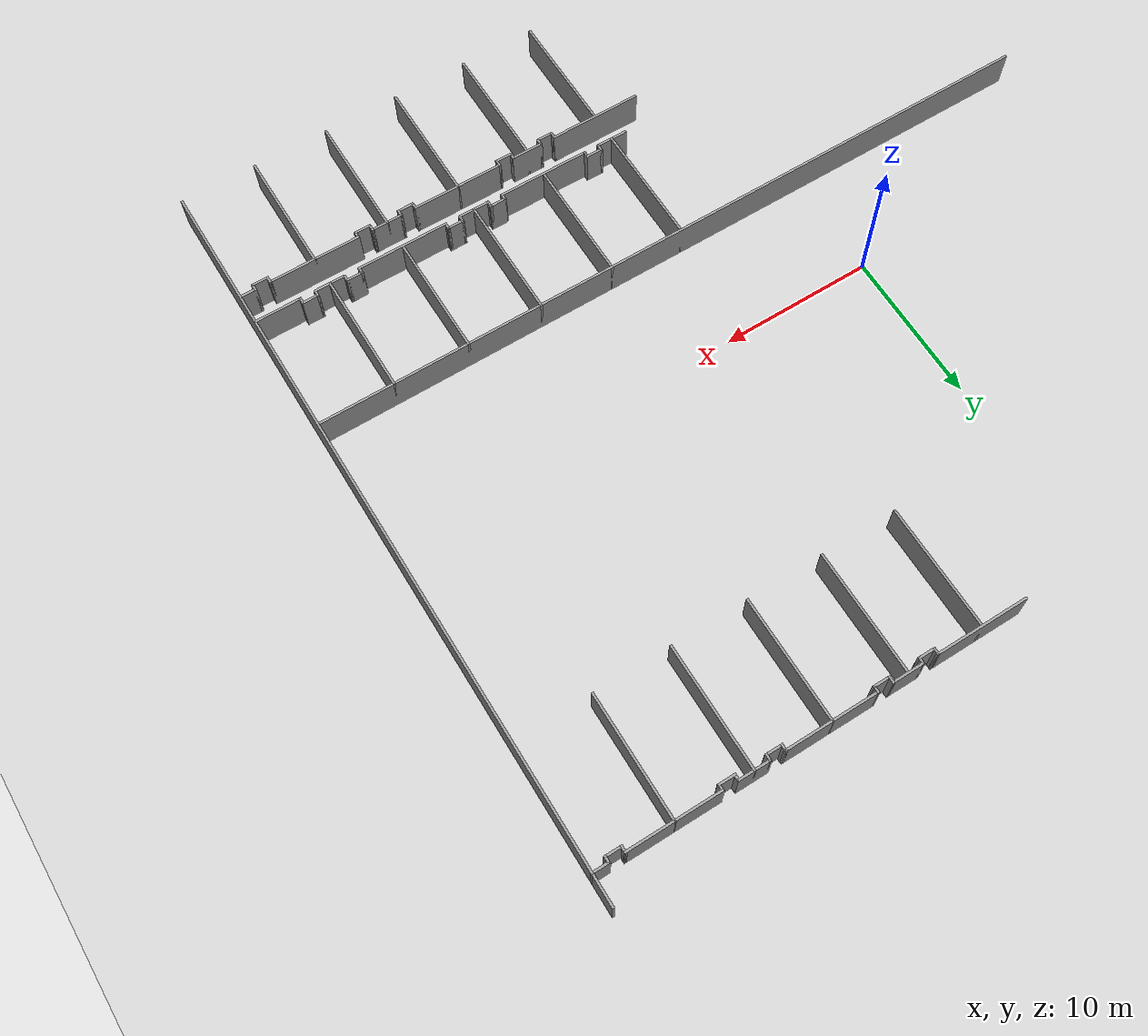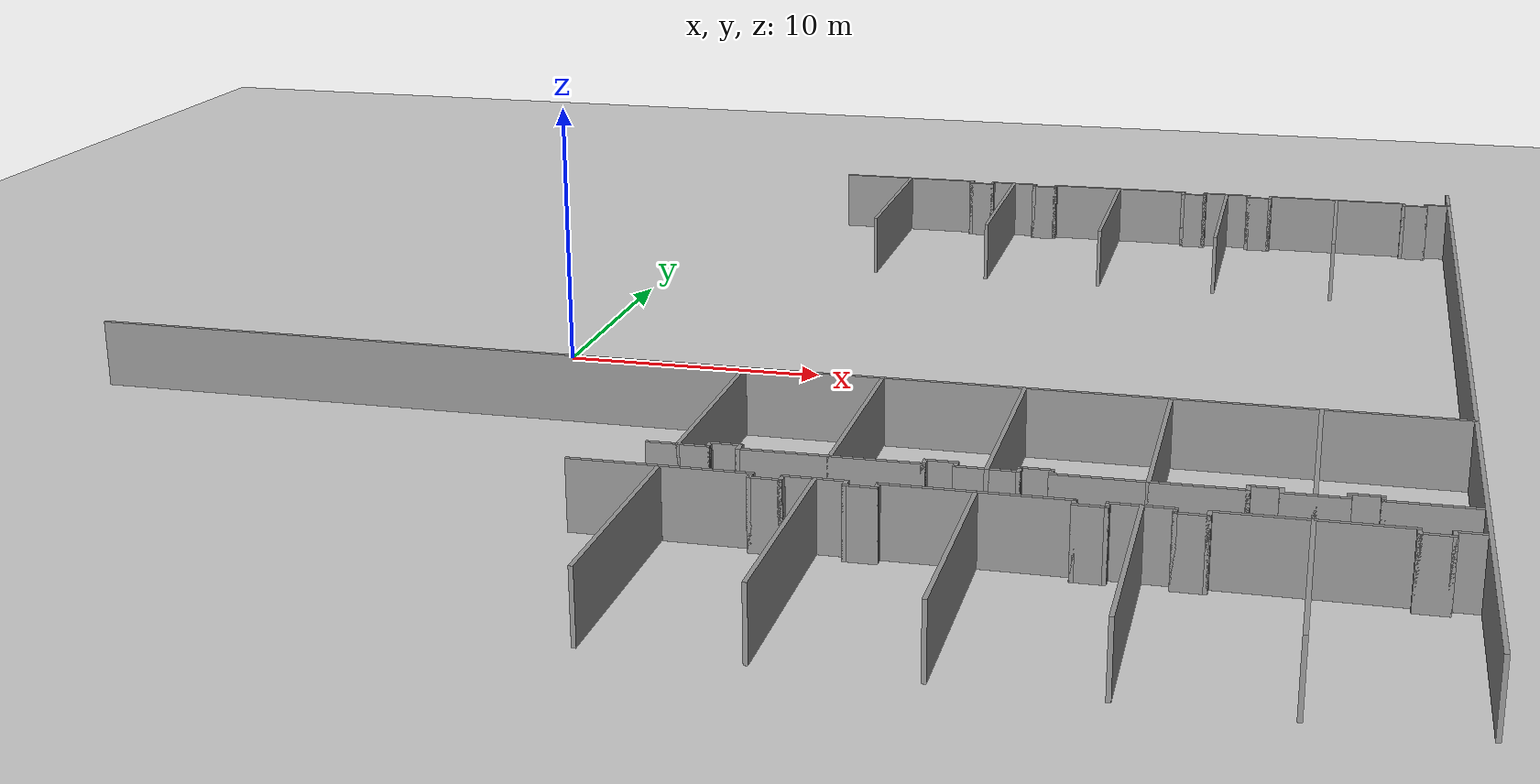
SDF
<sdf version="1.7">
 <world name="default">
  <model name="ground_plane">
   <static>1</static>
   <link name="link">
    <collision name="collision">
     <geometry><plane><normal>0 0 1</normal><size>100 100</size></plane></geometry>
     <surface>
      <contact><collide_bitmask>65535</collide_bitmask></contact>
      <friction><ode><mu>100</mu><mu2>50</mu2></ode></friction>
     </surface>
    </collision>
    <visual name="visual">
     <cast_shadows>0</cast_shadows>
     <geometry><plane><normal>0 0 1</normal><size>100 100</size></plane></geometry>
     <material>
      <script><uri>file://media/materials/scripts/gazebo.material</uri><name>Gazebo/Grey</name></script>
     </material>
    </visual>
   </link>
  </model>
  <model name="hotel_floor">
   <link name="Wall_256">
    <collision name="Wall_256_Collision">
     <geometry><box><size>6.15 0.15 2.5</size></box></geometry>
     <pose>0 0 1.25 0 -0 0</pose>
    </collision>
    <visual name="Wall_256_Visual">
     <pose>0 0 1.25 0 -0 0</pose>
     <geometry><box><size>6.15 0.15 2.5</size></box></geometry>
     <material>
      <script><uri>file://media/materials/scripts/gazebo.material</uri><name>Gazebo/Grey</name></script>
      <ambient>1 1 1 1</ambient>
     </material>
     <meta><layer>0</layer></meta>
    </visual>
    <pose>9 -17 0 0 -0 0</pose>
   </link>
   <link name="Wall_258">
    <collision name="Wall_258_Collision">
     <geometry><box><size>0.5 0.15 2.5</size></box></geometry>
     <pose>0 0 1.25 0 -0 0</pose>
    </collision>
    <visual name="Wall_258_Visual">
     <pose>0 0 1.25 0 -0 0</pose>
     <geometry><box><size>0.5 0.15 2.5</size></box></geometry>
     <material>
      <script><uri>file://media/materials/scripts/gazebo.material</uri><name>Gazebo/Grey</name></script>
      <ambient>1 1 1 1</ambient>
     </material>
     <meta><layer>0</layer></meta>
    </visual>
    <pose>12 -17.175 0 0 -0 -1.5708</pose>
   </link>
   <link name="Wall_259">
    <collision name="Wall_259_Collision">
     <geometry><box><size>1.15 0.15 2.5</size></box></geometry>
     <pose>0 0 1.25 0 -0 0</pose>
    </collision>
    <visual name="Wall_259_Visual">
     <pose>0 0 1.25 0 -0 0</pose>
     <geometry><box><size>1.15 0.15 2.5</size></box></geometry>
     <material>
      <script><uri>file://media/materials/scripts/gazebo.material</uri><name>Gazebo/Grey</name></script>
      <ambient>1 1 1 1</ambient>
     </material>
     <meta><layer>0</layer></meta>
    </visual>
    <pose>12.5 -17.35 0 0 -0 0</pose>
   </link>
   <link name="Wall_261">
    <collision name="Wall_261_Collision">
     <geometry><box><size>0.5 0.15 2.5</size></box></geometry>
     <pose>0 0 1.25 0 -0 0</pose>
    </collision>
    <visual name="Wall_261_Visual">
     <pose>0 0 1.25 0 -0 0</pose>
     <geometry><box><size>0.5 0.15 2.5</size></box></geometry>
     <material>
      <script><uri>file://media/materials/scripts/gazebo.material</uri><name>Gazebo/Grey</name></script>
      <ambient>1 1 1 1</ambient>
     </material>
     <meta><layer>0</layer></meta>
    </visual>
    <pose>13 -17.175 0 0 -0 1.5708</pose>
   </link>
   <link name="Wall_262">
    <collision name="Wall_262_Collision">
     <geometry><box><size>2.15 0.15 2.5</size></box></geometry>
     <pose>0 0 1.25 0 -0 0</pose>
    </collision>
    <visual name="Wall_262_Visual">
     <pose>0 0 1.25 0 -0 0</pose>
     <geometry><box><size>2.15 0.15 2.5</size></box></geometry>
     <material>
      <script><uri>file://media/materials/scripts/gazebo.material</uri><name>Gazebo/Grey</name></script>
      <ambient>1 1 1 1</ambient>
     </material>
     <meta><layer>0</layer></meta>
    </visual>
    <pose>14 -17 0 0 -0 0</pose>
   </link>
   <link name="Wall_264">
    <collision name="Wall_264_Collision">
     <geometry><box><size>0.5 0.15 2.5</size></box></geometry>
     <pose>0 0 1.25 0 -0 0</pose>
    </collision>
    <visual name="Wall_264_Visual">
     <pose>0 0 1.25 0 -0 0</pose>
     <geometry><box><size>0.5 0.15 2.5</size></box></geometry>
     <material>
      <script><uri>file://media/materials/scripts/gazebo.material</uri><name>Gazebo/Grey</name></script>
      <ambient>1 1 1 1</ambient>
     </material>
     <meta><layer>0</layer></meta>
    </visual>
    <pose>15 -17.175 0 0 -0 -1.5708</pose>
   </link>
   <link name="Wall_265">
    <collision name="Wall_265_Collision">
     <geometry><box><size>1.15 0.15 2.5</size></box></geometry>
     <pose>0 0 1.25 0 -0 0</pose>
    </collision>
    <visual name="Wall_265_Visual">
     <pose>0 0 1.25 0 -0 0</pose>
     <geometry><box><size>1.15 0.15 2.5</size></box></geometry>
     <material>
      <script><uri>file://media/materials/scripts/gazebo.material</uri><name>Gazebo/Grey</name></script>
      <ambient>1 1 1 1</ambient>
     </material>
     <meta><layer>0</layer></meta>
    </visual>
    <pose>15.5 -17.35 0 0 -0 0</pose>
   </link>
   <link name="Wall_267">
    <collision name="Wall_267_Collision">
     <geometry><box><size>0.5 0.15 2.5</size></box></geometry>
     <pose>0 0 1.25 0 -0 0</pose>
    </collision>
    <visual name="Wall_267_Visual">
     <pose>0 0 1.25 0 -0 0</pose>
     <geometry><box><size>0.5 0.15 2.5</size></box></geometry>
     <material>
      <script><uri>file://media/materials/scripts/gazebo.material</uri><name>Gazebo/Grey</name></script>
      <ambient>1 1 1 1</ambient>
     </material>
     <meta><layer>0</layer></meta>
    </visual>
    <pose>16 -17.175 0 0 -0 1.5708</pose>
   </link>
   <link name="Wall_268">
    <collision name="Wall_268_Collision">
     <geometry><box><size>6.15 0.15 2.5</size></box></geometry>
     <pose>0 0 1.25 0 -0 0</pose>
    </collision>
    <visual name="Wall_268_Visual">
     <pose>0 0 1.25 0 -0 0</pose>
     <geometry><box><size>6.15 0.15 2.5</size></box></geometry>
     <material>
      <script><uri>file://media/materials/scripts/gazebo.material</uri><name>Gazebo/Grey</name></script>
      <ambient>1 1 1 1</ambient>
     </material>
     <meta><layer>0</layer></meta>
    </visual>
    <pose>19 -17 0 0 -0 0</pose>
   </link>
   <link name="Wall_270">
    <collision name="Wall_270_Collision">
     <geometry><box><size>0.5 0.15 2.5</size></box></geometry>
     <pose>0 0 1.25 0 -0 0</pose>
    </collision>
    <visual name="Wall_270_Visual">
     <pose>0 0 1.25 0 -0 0</pose>
     <geometry><box><size>0.5 0.15 2.5</size></box></geometry>
     <material>
      <script><uri>file://media/materials/scripts/gazebo.material</uri><name>Gazebo/Grey</name></script>
      <ambient>1 1 1 1</ambient>
     </material>
     <meta><layer>0</layer></meta>
    </visual>
    <pose>22 -17.175 0 0 -0 -1.5708</pose>
   </link>
   <link name="Wall_271">
    <collision name="Wall_271_Collision">
     <geometry><box><size>1.15 0.15 2.5</size></box></geometry>
     <pose>0 0 1.25 0 -0 0</pose>
    </collision>
    <visual name="Wall_271_Visual">
     <pose>0 0 1.25 0 -0 0</pose>
     <geometry><box><size>1.15 0.15 2.5</size></box></geometry>
     <material>
      <script><uri>file://media/materials/scripts/gazebo.material</uri><name>Gazebo/Grey</name></script>
      <ambient>1 1 1 1</ambient>
     </material>
     <meta><layer>0</layer></meta>
    </visual>
    <pose>22.5 -17.35 0 0 -0 0</pose>
   </link>
   <link name="Wall_273">
    <collision name="Wall_273_Collision">
     <geometry><box><size>0.5 0.15 2.5</size></box></geometry>
     <pose>0 0 1.25 0 -0 0</pose>
    </collision>
    <visual name="Wall_273_Visual">
     <pose>0 0 1.25 0 -0 0</pose>
     <geometry><box><size>0.5 0.15 2.5</size></box></geometry>
     <material>
      <script><uri>file://media/materials/scripts/gazebo.material</uri><name>Gazebo/Grey</name></script>
      <ambient>1 1 1 1</ambient>
     </material>
     <meta><layer>0</layer></meta>
    </visual>
    <pose>23 -17.175 0 0 -0 1.5708</pose>
   </link>
   <link name="Wall_274">
    <collision name="Wall_274_Collision">
     <geometry><box><size>2.15 0.15 2.5</size></box></geometry>
     <pose>0 0 1.25 0 -0 0</pose>
    </collision>
    <visual name="Wall_274_Visual">
     <pose>0 0 1.25 0 -0 0</pose>
     <geometry><box><size>2.15 0.15 2.5</size></box></geometry>
     <material>
      <script><uri>file://media/materials/scripts/gazebo.material</uri><name>Gazebo/Grey</name></script>
      <ambient>1 1 1 1</ambient>
     </material>
     <meta><layer>0</layer></meta>
    </visual>
    <pose>24 -17 0 0 -0 0</pose>
   </link>
   <link name="Wall_276">
    <collision name="Wall_276_Collision">
     <geometry><box><size>0.5 0.15 2.5</size></box></geometry>
     <pose>0 0 1.25 0 -0 0</pose>
    </collision>
    <visual name="Wall_276_Visual">
     <pose>0 0 1.25 0 -0 0</pose>
     <geometry><box><size>0.5 0.15 2.5</size></box></geometry>
     <material>
      <script><uri>file://media/materials/scripts/gazebo.material</uri><name>Gazebo/Grey</name></script>
      <ambient>1 1 1 1</ambient>
     </material>
     <meta><layer>0</layer></meta>
    </visual>
    <pose>25 -17.175 0 0 -0 -1.5708</pose>
   </link>
   <link name="Wall_277">
    <collision name="Wall_277_Collision">
     <geometry><box><size>1.15 0.15 2.5</size></box></geometry>
     <pose>0 0 1.25 0 -0 0</pose>
    </collision>
    <visual name="Wall_277_Visual">
     <pose>0 0 1.25 0 -0 0</pose>
     <geometry><box><size>1.15 0.15 2.5</size></box></geometry>
     <material>
      <script><uri>file://media/materials/scripts/gazebo.material</uri><name>Gazebo/Grey</name></script>
      <ambient>1 1 1 1</ambient>
     </material>
     <meta><layer>0</layer></meta>
    </visual>
    <pose>25.5 -17.35 0 0 -0 0</pose>
   </link>
   <link name="Wall_279">
    <collision name="Wall_279_Collision">
     <geometry><box><size>0.5 0.15 2.5</size></box></geometry>
     <pose>0 0 1.25 0 -0 0</pose>
    </collision>
    <visual name="Wall_279_Visual">
     <pose>0 0 1.25 0 -0 0</pose>
     <geometry><box><size>0.5 0.15 2.5</size></box></geometry>
     <material>
      <script><uri>file://media/materials/scripts/gazebo.material</uri><name>Gazebo/Grey</name></script>
      <ambient>1 1 1 1</ambient>
     </material>
     <meta><layer>0</layer></meta>
    </visual>
    <pose>26 -17.175 0 0 -0 1.5708</pose>
   </link>
   <link name="Wall_28">
    <collision name="Wall_28_Collision">
     <geometry><box><size>50.15 0.15 2.5</size></box></geometry>
     <pose>0 0 1.25 0 -0 0</pose>
    </collision>
    <visual name="Wall_28_Visual">
     <pose>0 0 1.25 0 -0 0</pose>
     <geometry><box><size>50.15 0.15 2.5</size></box></geometry>
     <material>
      <script><uri>file://media/materials/scripts/gazebo.material</uri><name>Gazebo/Grey</name></script>
      <ambient>1 1 1 1</ambient>
     </material>
     <meta><layer>0</layer></meta>
    </visual>
    <pose>9 -7 0 0 -0 0</pose>
   </link>
   <link name="Wall_280">
    <collision name="Wall_280_Collision">
     <geometry><box><size>6.15 0.15 2.5</size></box></geometry>
     <pose>0 0 1.25 0 -0 0</pose>
    </collision>
    <visual name="Wall_280_Visual">
     <pose>0 0 1.25 0 -0 0</pose>
     <geometry><box><size>6.15 0.15 2.5</size></box></geometry>
     <material>
      <script><uri>file://media/materials/scripts/gazebo.material</uri><name>Gazebo/Grey</name></script>
      <ambient>1 1 1 1</ambient>
     </material>
     <meta><layer>0</layer></meta>
    </visual>
    <pose>29 -17 0 0 -0 0</pose>
   </link>
   <link name="Wall_282">
    <collision name="Wall_282_Collision">
     <geometry><box><size>0.5 0.15 2.5</size></box></geometry>
     <pose>0 0 1.25 0 -0 0</pose>
    </collision>
    <visual name="Wall_282_Visual">
     <pose>0 0 1.25 0 -0 0</pose>
     <geometry><box><size>0.5 0.15 2.5</size></box></geometry>
     <material>
      <script><uri>file://media/materials/scripts/gazebo.material</uri><name>Gazebo/Grey</name></script>
      <ambient>1 1 1 1</ambient>
     </material>
     <meta><layer>0</layer></meta>
    </visual>
    <pose>32 -17.175 0 0 -0 -1.5708</pose>
   </link>
   <link name="Wall_283">
    <collision name="Wall_283_Collision">
     <geometry><box><size>1.15 0.15 2.5</size></box></geometry>
     <pose>0 0 1.25 0 -0 0</pose>
    </collision>
    <visual name="Wall_283_Visual">
     <pose>0 0 1.25 0 -0 0</pose>
     <geometry><box><size>1.15 0.15 2.5</size></box></geometry>
     <material>
      <script><uri>file://media/materials/scripts/gazebo.material</uri><name>Gazebo/Grey</name></script>
      <ambient>1 1 1 1</ambient>
     </material>
     <meta><layer>0</layer></meta>
    </visual>
    <pose>32.5 -17.35 0 0 -0 0</pose>
   </link>
   <link name="Wall_285">
    <collision name="Wall_285_Collision">
     <geometry><box><size>0.5 0.15 2.5</size></box></geometry>
     <pose>0 0 1.25 0 -0 0</pose>
    </collision>
    <visual name="Wall_285_Visual">
     <pose>0 0 1.25 0 -0 0</pose>
     <geometry><box><size>0.5 0.15 2.5</size></box></geometry>
     <material>
      <script><uri>file://media/materials/scripts/gazebo.material</uri><name>Gazebo/Grey</name></script>
      <ambient>1 1 1 1</ambient>
     </material>
     <meta><layer>0</layer></meta>
    </visual>
    <pose>33 -17.175 0 0 -0 1.5708</pose>
   </link>
   <link name="Wall_286">
    <collision name="Wall_286_Collision">
     <geometry><box><size>1.15 0.15 2.5</size></box></geometry>
     <pose>0 0 1.25 0 -0 0</pose>
    </collision>
    <visual name="Wall_286_Visual">
     <pose>0 0 1.25 0 -0 0</pose>
     <geometry><box><size>1.15 0.15 2.5</size></box></geometry>
     <material>
      <script><uri>file://media/materials/scripts/gazebo.material</uri><name>Gazebo/Grey</name></script>
      <ambient>1 1 1 1</ambient>
     </material>
     <meta><layer>0</layer></meta>
    </visual>
    <pose>33.5 -17 0 0 -0 0</pose>
   </link>
   <link name="Wall_306">
    <collision name="Wall_306_Collision">
     <geometry><box><size>2.15 0.15 2.5</size></box></geometry>
     <pose>0 0 1.25 0 -0 0</pose>
    </collision>
    <visual name="Wall_306_Visual">
     <pose>0 0 1.25 0 -0 0</pose>
     <geometry><box><size>2.15 0.15 2.5</size></box></geometry>
     <material>
      <script><uri>file://media/materials/scripts/gazebo.material</uri><name>Gazebo/Grey</name></script>
      <ambient>1 1 1 1</ambient>
     </material>
     <meta><layer>0</layer></meta>
    </visual>
    <pose>9 -15 0 0 -0 0</pose>
   </link>
   <link name="Wall_308">
    <collision name="Wall_308_Collision">
     <geometry><box><size>0.5 0.15 2.5</size></box></geometry>
     <pose>0 0 1.25 0 -0 0</pose>
    </collision>
    <visual name="Wall_308_Visual">
     <pose>0 0 1.25 0 -0 0</pose>
     <geometry><box><size>0.5 0.15 2.5</size></box></geometry>
     <material>
      <script><uri>file://media/materials/scripts/gazebo.material</uri><name>Gazebo/Grey</name></script>
      <ambient>1 1 1 1</ambient>
     </material>
     <meta><layer>0</layer></meta>
    </visual>
    <pose>10 -14.825 0 0 -0 1.5708</pose>
   </link>
   <link name="Wall_309">
    <collision name="Wall_309_Collision">
     <geometry><box><size>1.15 0.15 2.5</size></box></geometry>
     <pose>0 0 1.25 0 -0 0</pose>
    </collision>
    <visual name="Wall_309_Visual">
     <pose>0 0 1.25 0 -0 0</pose>
     <geometry><box><size>1.15 0.15 2.5</size></box></geometry>
     <material>
      <script><uri>file://media/materials/scripts/gazebo.material</uri><name>Gazebo/Grey</name></script>
      <ambient>1 1 1 1</ambient>
     </material>
     <meta><layer>0</layer></meta>
    </visual>
    <pose>10.5 -14.65 0 0 -0 0</pose>
   </link>
   <link name="Wall_311">
    <collision name="Wall_311_Collision">
     <geometry><box><size>0.5 0.15 2.5</size></box></geometry>
     <pose>0 0 1.25 0 -0 0</pose>
    </collision>
    <visual name="Wall_311_Visual">
     <pose>0 0 1.25 0 -0 0</pose>
     <geometry><box><size>0.5 0.15 2.5</size></box></geometry>
     <material>
      <script><uri>file://media/materials/scripts/gazebo.material</uri><name>Gazebo/Grey</name></script>
      <ambient>1 1 1 1</ambient>
     </material>
     <meta><layer>0</layer></meta>
    </visual>
    <pose>11 -14.825 0 0 -0 -1.5708</pose>
   </link>
   <link name="Wall_312">
    <collision name="Wall_312_Collision">
     <geometry><box><size>6.15 0.15 2.5</size></box></geometry>
     <pose>0 0 1.25 0 -0 0</pose>
    </collision>
    <visual name="Wall_312_Visual">
     <pose>0 0 1.25 0 -0 0</pose>
     <geometry><box><size>6.15 0.15 2.5</size></box></geometry>
     <material>
      <script><uri>file://media/materials/scripts/gazebo.material</uri><name>Gazebo/Grey</name></script>
      <ambient>1 1 1 1</ambient>
     </material>
     <meta><layer>0</layer></meta>
    </visual>
    <pose>14 -15 0 0 -0 0</pose>
   </link>
   <link name="Wall_314">
    <collision name="Wall_314_Collision">
     <geometry><box><size>0.5 0.15 2.5</size></box></geometry>
     <pose>0 0 1.25 0 -0 0</pose>
    </collision>
    <visual name="Wall_314_Visual">
     <pose>0 0 1.25 0 -0 0</pose>
     <geometry><box><size>0.5 0.15 2.5</size></box></geometry>
     <material>
      <script><uri>file://media/materials/scripts/gazebo.material</uri><name>Gazebo/Grey</name></script>
      <ambient>1 1 1 1</ambient>
     </material>
     <meta><layer>0</layer></meta>
    </visual>
    <pose>17 -14.825 0 0 -0 1.5708</pose>
   </link>
   <link name="Wall_315">
    <collision name="Wall_315_Collision">
     <geometry><box><size>1.15 0.15 2.5</size></box></geometry>
     <pose>0 0 1.25 0 -0 0</pose>
    </collision>
    <visual name="Wall_315_Visual">
     <pose>0 0 1.25 0 -0 0</pose>
     <geometry><box><size>1.15 0.15 2.5</size></box></geometry>
     <material>
      <script><uri>file://media/materials/scripts/gazebo.material</uri><name>Gazebo/Grey</name></script>
      <ambient>1 1 1 1</ambient>
     </material>
     <meta><layer>0</layer></meta>
    </visual>
    <pose>17.5 -14.65 0 0 -0 0</pose>
   </link>
   <link name="Wall_317">
    <collision name="Wall_317_Collision">
     <geometry><box><size>0.5 0.15 2.5</size></box></geometry>
     <pose>0 0 1.25 0 -0 0</pose>
    </collision>
    <visual name="Wall_317_Visual">
     <pose>0 0 1.25 0 -0 0</pose>
     <geometry><box><size>0.5 0.15 2.5</size></box></geometry>
     <material>
      <script><uri>file://media/materials/scripts/gazebo.material</uri><name>Gazebo/Grey</name></script>
      <ambient>1 1 1 1</ambient>
     </material>
     <meta><layer>0</layer></meta>
    </visual>
    <pose>18 -14.825 0 0 -0 -1.5708</pose>
   </link>
   <link name="Wall_318">
    <collision name="Wall_318_Collision">
     <geometry><box><size>2.15 0.15 2.5</size></box></geometry>
     <pose>0 0 1.25 0 -0 0</pose>
    </collision>
    <visual name="Wall_318_Visual">
     <pose>0 0 1.25 0 -0 0</pose>
     <geometry><box><size>2.15 0.15 2.5</size></box></geometry>
     <material>
      <script><uri>file://media/materials/scripts/gazebo.material</uri><name>Gazebo/Grey</name></script>
      <ambient>1 1 1 1</ambient>
     </material>
     <meta><layer>0</layer></meta>
    </visual>
    <pose>19 -15 0 0 -0 0</pose>
   </link>
   <link name="Wall_320">
    <collision name="Wall_320_Collision">
     <geometry><box><size>0.5 0.15 2.5</size></box></geometry>
     <pose>0 0 1.25 0 -0 0</pose>
    </collision>
    <visual name="Wall_320_Visual">
     <pose>0 0 1.25 0 -0 0</pose>
     <geometry><box><size>0.5 0.15 2.5</size></box></geometry>
     <material>
      <script><uri>file://media/materials/scripts/gazebo.material</uri><name>Gazebo/Grey</name></script>
      <ambient>1 1 1 1</ambient>
     </material>
     <meta><layer>0</layer></meta>
    </visual>
    <pose>20 -14.825 0 0 -0 1.5708</pose>
   </link>
   <link name="Wall_321">
    <collision name="Wall_321_Collision">
     <geometry><box><size>1.15 0.15 2.5</size></box></geometry>
     <pose>0 0 1.25 0 -0 0</pose>
    </collision>
    <visual name="Wall_321_Visual">
     <pose>0 0 1.25 0 -0 0</pose>
     <geometry><box><size>1.15 0.15 2.5</size></box></geometry>
     <material>
      <script><uri>file://media/materials/scripts/gazebo.material</uri><name>Gazebo/Grey</name></script>
      <ambient>1 1 1 1</ambient>
     </material>
     <meta><layer>0</layer></meta>
    </visual>
    <pose>20.5 -14.65 0 0 -0 0</pose>
   </link>
   <link name="Wall_323">
    <collision name="Wall_323_Collision">
     <geometry><box><size>0.5 0.15 2.5</size></box></geometry>
     <pose>0 0 1.25 0 -0 0</pose>
    </collision>
    <visual name="Wall_323_Visual">
     <pose>0 0 1.25 0 -0 0</pose>
     <geometry><box><size>0.5 0.15 2.5</size></box></geometry>
     <material>
      <script><uri>file://media/materials/scripts/gazebo.material</uri><name>Gazebo/Grey</name></script>
      <ambient>1 1 1 1</ambient>
     </material>
     <meta><layer>0</layer></meta>
    </visual>
    <pose>21 -14.825 0 0 -0 -1.5708</pose>
   </link>
   <link name="Wall_324">
    <collision name="Wall_324_Collision">
     <geometry><box><size>6.15 0.15 2.5</size></box></geometry>
     <pose>0 0 1.25 0 -0 0</pose>
    </collision>
    <visual name="Wall_324_Visual">
     <pose>0 0 1.25 0 -0 0</pose>
     <geometry><box><size>6.15 0.15 2.5</size></box></geometry>
     <material>
      <script><uri>file://media/materials/scripts/gazebo.material</uri><name>Gazebo/Grey</name></script>
      <ambient>1 1 1 1</ambient>
     </material>
     <meta><layer>0</layer></meta>
    </visual>
    <pose>24 -15 0 0 -0 0</pose>
   </link>
   <link name="Wall_326">
    <collision name="Wall_326_Collision">
     <geometry><box><size>0.5 0.15 2.5</size></box></geometry>
     <pose>0 0 1.25 0 -0 0</pose>
    </collision>
    <visual name="Wall_326_Visual">
     <pose>0 0 1.25 0 -0 0</pose>
     <geometry><box><size>0.5 0.15 2.5</size></box></geometry>
     <material>
      <script><uri>file://media/materials/scripts/gazebo.material</uri><name>Gazebo/Grey</name></script>
      <ambient>1 1 1 1</ambient>
     </material>
     <meta><layer>0</layer></meta>
    </visual>
    <pose>27 -14.825 0 0 -0 1.5708</pose>
   </link>
   <link name="Wall_327">
    <collision name="Wall_327_Collision">
     <geometry><box><size>1.15 0.15 2.5</size></box></geometry>
     <pose>0 0 1.25 0 -0 0</pose>
    </collision>
    <visual name="Wall_327_Visual">
     <pose>0 0 1.25 0 -0 0</pose>
     <geometry><box><size>1.15 0.15 2.5</size></box></geometry>
     <material>
      <script><uri>file://media/materials/scripts/gazebo.material</uri><name>Gazebo/Grey</name></script>
      <ambient>1 1 1 1</ambient>
     </material>
     <meta><layer>0</layer></meta>
    </visual>
    <pose>27.5 -14.65 0 0 -0 0</pose>
   </link>
   <link name="Wall_332">
    <collision name="Wall_332_Collision">
     <geometry><box><size>0.5 0.15 2.5</size></box></geometry>
     <pose>0 0 1.25 0 -0 0</pose>
    </collision>
    <visual name="Wall_332_Visual">
     <pose>0 0 1.25 0 -0 0</pose>
     <geometry><box><size>0.5 0.15 2.5</size></box></geometry>
     <material>
      <script><uri>file://media/materials/scripts/gazebo.material</uri><name>Gazebo/Grey</name></script>
      <ambient>1 1 1 1</ambient>
     </material>
     <meta><layer>0</layer></meta>
    </visual>
    <pose>28 -14.825 0 0 -0 -1.5708</pose>
   </link>
   <link name="Wall_333">
    <collision name="Wall_333_Collision">
     <geometry><box><size>2.15 0.15 2.5</size></box></geometry>
     <pose>0 0 1.25 0 -0 0</pose>
    </collision>
    <visual name="Wall_333_Visual">
     <pose>0 0 1.25 0 -0 0</pose>
     <geometry><box><size>2.15 0.15 2.5</size></box></geometry>
     <material>
      <script><uri>file://media/materials/scripts/gazebo.material</uri><name>Gazebo/Grey</name></script>
      <ambient>1 1 1 1</ambient>
     </material>
     <meta><layer>0</layer></meta>
    </visual>
    <pose>29 -15 0 0 -0 0</pose>
   </link>
   <link name="Wall_335">
    <collision name="Wall_335_Collision">
     <geometry><box><size>0.5 0.15 2.5</size></box></geometry>
     <pose>0 0 1.25 0 -0 0</pose>
    </collision>
    <visual name="Wall_335_Visual">
     <pose>0 0 1.25 0 -0 0</pose>
     <geometry><box><size>0.5 0.15 2.5</size></box></geometry>
     <material>
      <script><uri>file://media/materials/scripts/gazebo.material</uri><name>Gazebo/Grey</name></script>
      <ambient>1 1 1 1</ambient>
     </material>
     <meta><layer>0</layer></meta>
    </visual>
    <pose>30 -14.825 0 0 -0 1.5708</pose>
   </link>
   <link name="Wall_336">
    <collision name="Wall_336_Collision">
     <geometry><box><size>1.15 0.15 2.5</size></box></geometry>
     <pose>0 0 1.25 0 -0 0</pose>
    </collision>
    <visual name="Wall_336_Visual">
     <pose>0 0 1.25 0 -0 0</pose>
     <geometry><box><size>1.15 0.15 2.5</size></box></geometry>
     <material>
      <script><uri>file://media/materials/scripts/gazebo.material</uri><name>Gazebo/Grey</name></script>
      <ambient>1 1 1 1</ambient>
     </material>
     <meta><layer>0</layer></meta>
    </visual>
    <pose>30.5 -14.65 0 0 -0 0</pose>
   </link>
   <link name="Wall_338">
    <collision name="Wall_338_Collision">
     <geometry><box><size>0.5 0.15 2.5</size></box></geometry>
     <pose>0 0 1.25 0 -0 0</pose>
    </collision>
    <visual name="Wall_338_Visual">
     <pose>0 0 1.25 0 -0 0</pose>
     <geometry><box><size>0.5 0.15 2.5</size></box></geometry>
     <material>
      <script><uri>file://media/materials/scripts/gazebo.material</uri><name>Gazebo/Grey</name></script>
      <ambient>1 1 1 1</ambient>
     </material>
     <meta><layer>0</layer></meta>
    </visual>
    <pose>31 -14.825 0 0 -0 -1.5708</pose>
   </link>
   <link name="Wall_339">
    <collision name="Wall_339_Collision">
     <geometry><box><size>3.15 0.15 2.5</size></box></geometry>
     <pose>0 0 1.25 0 -0 0</pose>
    </collision>
    <visual name="Wall_339_Visual">
     <pose>0 0 1.25 0 -0 0</pose>
     <geometry><box><size>3.15 0.15 2.5</size></box></geometry>
     <material>
      <script><uri>file://media/materials/scripts/gazebo.material</uri><name>Gazebo/Grey</name></script>
      <ambient>1 1 1 1</ambient>
     </material>
     <meta><layer>0</layer></meta>
    </visual>
    <pose>32.5 -15 0 0 -0 0</pose>
   </link>
   <link name="Wall_34">
    <collision name="Wall_34_Collision">
     <geometry><box><size>8.15 0.15 2.5</size></box></geometry>
     <pose>0 0 1.25 0 -0 0</pose>
    </collision>
    <visual name="Wall_34_Visual">
     <pose>0 0 1.25 0 -0 0</pose>
     <geometry><box><size>8.15 0.15 2.5</size></box></geometry>
     <material>
      <script><uri>file://media/materials/scripts/gazebo.material</uri><name>Gazebo/Grey</name></script>
      <ambient>1 1 1 1</ambient>
     </material>
     <meta><layer>0</layer></meta>
    </visual>
    <pose>29 19 0 0 -0 -1.5708</pose>
   </link>
   <link name="Wall_36">
    <collision name="Wall_36_Collision">
     <geometry><box><size>8.15 0.15 2.5</size></box></geometry>
     <pose>0 0 1.25 0 -0 0</pose>
    </collision>
    <visual name="Wall_36_Visual">
     <pose>0 0 1.25 0 -0 0</pose>
     <geometry><box><size>8.15 0.15 2.5</size></box></geometry>
     <material>
      <script><uri>file://media/materials/scripts/gazebo.material</uri><name>Gazebo/Grey</name></script>
      <ambient>1 1 1 1</ambient>
     </material>
     <meta><layer>0</layer></meta>
    </visual>
    <pose>24 19 0 0 -0 -1.5708</pose>
   </link>
   <link name="Wall_38">
    <collision name="Wall_38_Collision">
     <geometry><box><size>8.15 0.15 2.5</size></box></geometry>
     <pose>0 0 1.25 0 -0 0</pose>
    </collision>
    <visual name="Wall_38_Visual">
     <pose>0 0 1.25 0 -0 0</pose>
     <geometry><box><size>8.15 0.15 2.5</size></box></geometry>
     <material>
      <script><uri>file://media/materials/scripts/gazebo.material</uri><name>Gazebo/Grey</name></script>
      <ambient>1 1 1 1</ambient>
     </material>
     <meta><layer>0</layer></meta>
    </visual>
    <pose>19 19 0 0 -0 -1.5708</pose>
   </link>
   <link name="Wall_40">
    <collision name="Wall_40_Collision">
     <geometry><box><size>8.15 0.15 2.5</size></box></geometry>
     <pose>0 0 1.25 0 -0 0</pose>
    </collision>
    <visual name="Wall_40_Visual">
     <pose>0 0 1.25 0 -0 0</pose>
     <geometry><box><size>8.15 0.15 2.5</size></box></geometry>
     <material>
      <script><uri>file://media/materials/scripts/gazebo.material</uri><name>Gazebo/Grey</name></script>
      <ambient>1 1 1 1</ambient>
     </material>
     <meta><layer>0</layer></meta>
    </visual>
    <pose>14 19 0 0 -0 -1.5708</pose>
   </link>
   <link name="Wall_415">
    <collision name="Wall_415_Collision">
     <geometry><box><size>6.15 0.15 2.5</size></box></geometry>
     <pose>0 0 1.25 0 -0 0</pose>
    </collision>
    <visual name="Wall_415_Visual">
     <pose>0 0 1.25 0 -0 0</pose>
     <geometry><box><size>6.15 0.15 2.5</size></box></geometry>
     <material>
      <script><uri>file://media/materials/scripts/gazebo.material</uri><name>Gazebo/Grey</name></script>
      <ambient>1 1 1 1</ambient>
     </material>
     <meta><layer>0</layer></meta>
    </visual>
    <pose>9 23 0 0 -0 0</pose>
   </link>
   <link name="Wall_417">
    <collision name="Wall_417_Collision">
     <geometry><box><size>0.5 0.15 2.5</size></box></geometry>
     <pose>0 0 1.25 0 -0 0</pose>
    </collision>
    <visual name="Wall_417_Visual">
     <pose>0 0 1.25 0 -0 0</pose>
     <geometry><box><size>0.5 0.15 2.5</size></box></geometry>
     <material>
      <script><uri>file://media/materials/scripts/gazebo.material</uri><name>Gazebo/Grey</name></script>
      <ambient>1 1 1 1</ambient>
     </material>
     <meta><layer>0</layer></meta>
    </visual>
    <pose>12 22.825 0 0 -0 -1.5708</pose>
   </link>
   <link name="Wall_418">
    <collision name="Wall_418_Collision">
     <geometry><box><size>1.15 0.15 2.5</size></box></geometry>
     <pose>0 0 1.25 0 -0 0</pose>
    </collision>
    <visual name="Wall_418_Visual">
     <pose>0 0 1.25 0 -0 0</pose>
     <geometry><box><size>1.15 0.15 2.5</size></box></geometry>
     <material>
      <script><uri>file://media/materials/scripts/gazebo.material</uri><name>Gazebo/Grey</name></script>
      <ambient>1 1 1 1</ambient>
     </material>
     <meta><layer>0</layer></meta>
    </visual>
    <pose>12.5 22.65 0 0 -0 0</pose>
   </link>
   <link name="Wall_42">
    <collision name="Wall_42_Collision">
     <geometry><box><size>8.15 0.15 2.5</size></box></geometry>
     <pose>0 0 1.25 0 -0 0</pose>
    </collision>
    <visual name="Wall_42_Visual">
     <pose>0 0 1.25 0 -0 0</pose>
     <geometry><box><size>8.15 0.15 2.5</size></box></geometry>
     <material>
      <script><uri>file://media/materials/scripts/gazebo.material</uri><name>Gazebo/Grey</name></script>
      <ambient>1 1 1 1</ambient>
     </material>
     <meta><layer>0</layer></meta>
    </visual>
    <pose>9 19 0 0 -0 -1.5708</pose>
   </link>
   <link name="Wall_420">
    <collision name="Wall_420_Collision">
     <geometry><box><size>0.5 0.15 2.5</size></box></geometry>
     <pose>0 0 1.25 0 -0 0</pose>
    </collision>
    <visual name="Wall_420_Visual">
     <pose>0 0 1.25 0 -0 0</pose>
     <geometry><box><size>0.5 0.15 2.5</size></box></geometry>
     <material>
      <script><uri>file://media/materials/scripts/gazebo.material</uri><name>Gazebo/Grey</name></script>
      <ambient>1 1 1 1</ambient>
     </material>
     <meta><layer>0</layer></meta>
    </visual>
    <pose>13 22.825 0 0 -0 1.5708</pose>
   </link>
   <link name="Wall_421">
    <collision name="Wall_421_Collision">
     <geometry><box><size>2.15 0.15 2.5</size></box></geometry>
     <pose>0 0 1.25 0 -0 0</pose>
    </collision>
    <visual name="Wall_421_Visual">
     <pose>0 0 1.25 0 -0 0</pose>
     <geometry><box><size>2.15 0.15 2.5</size></box></geometry>
     <material>
      <script><uri>file://media/materials/scripts/gazebo.material</uri><name>Gazebo/Grey</name></script>
      <ambient>1 1 1 1</ambient>
     </material>
     <meta><layer>0</layer></meta>
    </visual>
    <pose>14 23 0 0 -0 0</pose>
   </link>
   <link name="Wall_423">
    <collision name="Wall_423_Collision">
     <geometry><box><size>0.5 0.15 2.5</size></box></geometry>
     <pose>0 0 1.25 0 -0 0</pose>
    </collision>
    <visual name="Wall_423_Visual">
     <pose>0 0 1.25 0 -0 0</pose>
     <geometry><box><size>0.5 0.15 2.5</size></box></geometry>
     <material>
      <script><uri>file://media/materials/scripts/gazebo.material</uri><name>Gazebo/Grey</name></script>
      <ambient>1 1 1 1</ambient>
     </material>
     <meta><layer>0</layer></meta>
    </visual>
    <pose>15 22.825 0 0 -0 -1.5708</pose>
   </link>
   <link name="Wall_424">
    <collision name="Wall_424_Collision">
     <geometry><box><size>1.15 0.15 2.5</size></box></geometry>
     <pose>0 0 1.25 0 -0 0</pose>
    </collision>
    <visual name="Wall_424_Visual">
     <pose>0 0 1.25 0 -0 0</pose>
     <geometry><box><size>1.15 0.15 2.5</size></box></geometry>
     <material>
      <script><uri>file://media/materials/scripts/gazebo.material</uri><name>Gazebo/Grey</name></script>
      <ambient>1 1 1 1</ambient>
     </material>
     <meta><layer>0</layer></meta>
    </visual>
    <pose>15.5 22.65 0 0 -0 0</pose>
   </link>
   <link name="Wall_426">
    <collision name="Wall_426_Collision">
     <geometry><box><size>0.5 0.15 2.5</size></box></geometry>
     <pose>0 0 1.25 0 -0 0</pose>
    </collision>
    <visual name="Wall_426_Visual">
     <pose>0 0 1.25 0 -0 0</pose>
     <geometry><box><size>0.5 0.15 2.5</size></box></geometry>
     <material>
      <script><uri>file://media/materials/scripts/gazebo.material</uri><name>Gazebo/Grey</name></script>
      <ambient>1 1 1 1</ambient>
     </material>
     <meta><layer>0</layer></meta>
    </visual>
    <pose>16 22.825 0 0 -0 1.5708</pose>
   </link>
   <link name="Wall_427">
    <collision name="Wall_427_Collision">
     <geometry><box><size>6.15 0.15 2.5</size></box></geometry>
     <pose>0 0 1.25 0 -0 0</pose>
    </collision>
    <visual name="Wall_427_Visual">
     <pose>0 0 1.25 0 -0 0</pose>
     <geometry><box><size>6.15 0.15 2.5</size></box></geometry>
     <material>
      <script><uri>file://media/materials/scripts/gazebo.material</uri><name>Gazebo/Grey</name></script>
      <ambient>1 1 1 1</ambient>
     </material>
     <meta><layer>0</layer></meta>
    </visual>
    <pose>19 23 0 0 -0 0</pose>
   </link>
   <link name="Wall_429">
    <collision name="Wall_429_Collision">
     <geometry><box><size>0.5 0.15 2.5</size></box></geometry>
     <pose>0 0 1.25 0 -0 0</pose>
    </collision>
    <visual name="Wall_429_Visual">
     <pose>0 0 1.25 0 -0 0</pose>
     <geometry><box><size>0.5 0.15 2.5</size></box></geometry>
     <material>
      <script><uri>file://media/materials/scripts/gazebo.material</uri><name>Gazebo/Grey</name></script>
      <ambient>1 1 1 1</ambient>
     </material>
     <meta><layer>0</layer></meta>
    </visual>
    <pose>22 22.825 0 0 -0 -1.5708</pose>
   </link>
   <link name="Wall_430">
    <collision name="Wall_430_Collision">
     <geometry><box><size>1.15 0.15 2.5</size></box></geometry>
     <pose>0 0 1.25 0 -0 0</pose>
    </collision>
    <visual name="Wall_430_Visual">
     <pose>0 0 1.25 0 -0 0</pose>
     <geometry><box><size>1.15 0.15 2.5</size></box></geometry>
     <material>
      <script><uri>file://media/materials/scripts/gazebo.material</uri><name>Gazebo/Grey</name></script>
      <ambient>1 1 1 1</ambient>
     </material>
     <meta><layer>0</layer></meta>
    </visual>
    <pose>22.5 22.65 0 0 -0 0</pose>
   </link>
   <link name="Wall_432">
    <collision name="Wall_432_Collision">
     <geometry><box><size>0.5 0.15 2.5</size></box></geometry>
     <pose>0 0 1.25 0 -0 0</pose>
    </collision>
    <visual name="Wall_432_Visual">
     <pose>0 0 1.25 0 -0 0</pose>
     <geometry><box><size>0.5 0.15 2.5</size></box></geometry>
     <material>
      <script><uri>file://media/materials/scripts/gazebo.material</uri><name>Gazebo/Grey</name></script>
      <ambient>1 1 1 1</ambient>
     </material>
     <meta><layer>0</layer></meta>
    </visual>
    <pose>23 22.825 0 0 -0 1.5708</pose>
   </link>
   <link name="Wall_433">
    <collision name="Wall_433_Collision">
     <geometry><box><size>2.15 0.15 2.5</size></box></geometry>
     <pose>0 0 1.25 0 -0 0</pose>
    </collision>
    <visual name="Wall_433_Visual">
     <pose>0 0 1.25 0 -0 0</pose>
     <geometry><box><size>2.15 0.15 2.5</size></box></geometry>
     <material>
      <script><uri>file://media/materials/scripts/gazebo.material</uri><name>Gazebo/Grey</name></script>
      <ambient>1 1 1 1</ambient>
     </material>
     <meta><layer>0</layer></meta>
    </visual>
    <pose>24 23 0 0 -0 0</pose>
   </link>
   <link name="Wall_438">
    <collision name="Wall_438_Collision">
     <geometry><box><size>0.5 0.15 2.5</size></box></geometry>
     <pose>0 0 1.25 0 -0 0</pose>
    </collision>
    <visual name="Wall_438_Visual">
     <pose>0 0 1.25 0 -0 0</pose>
     <geometry><box><size>0.5 0.15 2.5</size></box></geometry>
     <material>
      <script><uri>file://media/materials/scripts/gazebo.material</uri><name>Gazebo/Grey</name></script>
      <ambient>1 1 1 1</ambient>
     </material>
     <meta><layer>0</layer></meta>
    </visual>
    <pose>25 22.825 0 0 -0 -1.5708</pose>
   </link>
   <link name="Wall_439">
    <collision name="Wall_439_Collision">
     <geometry><box><size>1.15 0.15 2.5</size></box></geometry>
     <pose>0 0 1.25 0 -0 0</pose>
    </collision>
    <visual name="Wall_439_Visual">
     <pose>0 0 1.25 0 -0 0</pose>
     <geometry><box><size>1.15 0.15 2.5</size></box></geometry>
     <material>
      <script><uri>file://media/materials/scripts/gazebo.material</uri><name>Gazebo/Grey</name></script>
      <ambient>1 1 1 1</ambient>
     </material>
     <meta><layer>0</layer></meta>
    </visual>
    <pose>25.5 22.65 0 0 -0 0</pose>
   </link>
   <link name="Wall_441">
    <collision name="Wall_441_Collision">
     <geometry><box><size>0.5 0.15 2.5</size></box></geometry>
     <pose>0 0 1.25 0 -0 0</pose>
    </collision>
    <visual name="Wall_441_Visual">
     <pose>0 0 1.25 0 -0 0</pose>
     <geometry><box><size>0.5 0.15 2.5</size></box></geometry>
     <material>
      <script><uri>file://media/materials/scripts/gazebo.material</uri><name>Gazebo/Grey</name></script>
      <ambient>1 1 1 1</ambient>
     </material>
     <meta><layer>0</layer></meta>
    </visual>
    <pose>26 22.825 0 0 -0 1.5708</pose>
   </link>
   <link name="Wall_442">
    <collision name="Wall_442_Collision">
     <geometry><box><size>6.15 0.15 2.5</size></box></geometry>
     <pose>0 0 1.25 0 -0 0</pose>
    </collision>
    <visual name="Wall_442_Visual">
     <pose>0 0 1.25 0 -0 0</pose>
     <geometry><box><size>6.15 0.15 2.5</size></box></geometry>
     <material>
      <script><uri>file://media/materials/scripts/gazebo.material</uri><name>Gazebo/Grey</name></script>
      <ambient>1 1 1 1</ambient>
     </material>
     <meta><layer>0</layer></meta>
    </visual>
    <pose>29 23 0 0 -0 0</pose>
   </link>
   <link name="Wall_444">
    <collision name="Wall_444_Collision">
     <geometry><box><size>0.5 0.15 2.5</size></box></geometry>
     <pose>0 0 1.25 0 -0 0</pose>
    </collision>
    <visual name="Wall_444_Visual">
     <pose>0 0 1.25 0 -0 0</pose>
     <geometry><box><size>0.5 0.15 2.5</size></box></geometry>
     <material>
      <script><uri>file://media/materials/scripts/gazebo.material</uri><name>Gazebo/Grey</name></script>
      <ambient>1 1 1 1</ambient>
     </material>
     <meta><layer>0</layer></meta>
    </visual>
    <pose>32 22.825 0 0 -0 -1.5708</pose>
   </link>
   <link name="Wall_445">
    <collision name="Wall_445_Collision">
     <geometry><box><size>1.15 0.15 2.5</size></box></geometry>
     <pose>0 0 1.25 0 -0 0</pose>
    </collision>
    <visual name="Wall_445_Visual">
     <pose>0 0 1.25 0 -0 0</pose>
     <geometry><box><size>1.15 0.15 2.5</size></box></geometry>
     <material>
      <script><uri>file://media/materials/scripts/gazebo.material</uri><name>Gazebo/Grey</name></script>
      <ambient>1 1 1 1</ambient>
     </material>
     <meta><layer>0</layer></meta>
    </visual>
    <pose>32.5 22.65 0 0 -0 0</pose>
   </link>
   <link name="Wall_447">
    <collision name="Wall_447_Collision">
     <geometry><box><size>0.5 0.15 2.5</size></box></geometry>
     <pose>0 0 1.25 0 -0 0</pose>
    </collision>
    <visual name="Wall_447_Visual">
     <pose>0 0 1.25 0 -0 0</pose>
     <geometry><box><size>0.5 0.15 2.5</size></box></geometry>
     <material>
      <script><uri>file://media/materials/scripts/gazebo.material</uri><name>Gazebo/Grey</name></script>
      <ambient>1 1 1 1</ambient>
     </material>
     <meta><layer>0</layer></meta>
    </visual>
    <pose>33 22.825 0 0 -0 1.5708</pose>
   </link>
   <link name="Wall_448">
    <collision name="Wall_448_Collision">
     <geometry><box><size>1.15 0.15 2.5</size></box></geometry>
     <pose>0 0 1.25 0 -0 0</pose>
    </collision>
    <visual name="Wall_448_Visual">
     <pose>0 0 1.25 0 -0 0</pose>
     <geometry><box><size>1.15 0.15 2.5</size></box></geometry>
     <material>
      <script><uri>file://media/materials/scripts/gazebo.material</uri><name>Gazebo/Grey</name></script>
      <ambient>1 1 1 1</ambient>
     </material>
     <meta><layer>0</layer></meta>
    </visual>
    <pose>33.5 23 0 0 -0 0</pose>
   </link>
   <link name="Wall_6">
    <collision name="Wall_6_Collision">
     <geometry><box><size>50.15 0.15 2.5</size></box></geometry>
     <pose>0 0 1.25 0 -0 0</pose>
    </collision>
    <visual name="Wall_6_Visual">
     <pose>0 0 1.25 0 -0 0</pose>
     <geometry><box><size>50.15 0.15 2.5</size></box></geometry>
     <material>
      <script><uri>file://media/materials/scripts/gazebo.material</uri><name>Gazebo/Grey</name></script>
      <ambient>1 1 1 1</ambient>
     </material>
     <meta><layer>0</layer></meta>
    </visual>
    <pose>34 0 0 0 -0 1.5708</pose>
   </link>
   <link name="Wall_66">
    <collision name="Wall_66_Collision">
     <geometry><box><size>8.15 0.15 2.5</size></box></geometry>
     <pose>0 0 1.25 0 -0 0</pose>
    </collision>
    <visual name="Wall_66_Visual">
     <pose>0 0 1.25 0 -0 0</pose>
     <geometry><box><size>8.15 0.15 2.5</size></box></geometry>
     <material>
      <script><uri>file://media/materials/scripts/gazebo.material</uri><name>Gazebo/Grey</name></script>
      <ambient>1 1 1 1</ambient>
     </material>
     <meta><layer>0</layer></meta>
    </visual>
    <pose>9 -11 0 0 -0 1.5708</pose>
   </link>
   <link name="Wall_68">
    <collision name="Wall_68_Collision">
     <geometry><box><size>8.15 0.15 2.5</size></box></geometry>
     <pose>0 0 1.25 0 -0 0</pose>
    </collision>
    <visual name="Wall_68_Visual">
     <pose>0 0 1.25 0 -0 0</pose>
     <geometry><box><size>8.15 0.15 2.5</size></box></geometry>
     <material>
      <script><uri>file://media/materials/scripts/gazebo.material</uri><name>Gazebo/Grey</name></script>
      <ambient>1 1 1 1</ambient>
     </material>
     <meta><layer>0</layer></meta>
    </visual>
    <pose>14 -11 0 0 -0 1.5708</pose>
   </link>
   <link name="Wall_70">
    <collision name="Wall_70_Collision">
     <geometry><box><size>8.15 0.15 2.5</size></box></geometry>
     <pose>0 0 1.25 0 -0 0</pose>
    </collision>
    <visual name="Wall_70_Visual">
     <pose>0 0 1.25 0 -0 0</pose>
     <geometry><box><size>8.15 0.15 2.5</size></box></geometry>
     <material>
      <script><uri>file://media/materials/scripts/gazebo.material</uri><name>Gazebo/Grey</name></script>
      <ambient>1 1 1 1</ambient>
     </material>
     <meta><layer>0</layer></meta>
    </visual>
    <pose>19 -11 0 0 -0 1.5708</pose>
   </link>
   <link name="Wall_72">
    <collision name="Wall_72_Collision">
     <geometry><box><size>8.15 0.15 2.5</size></box></geometry>
     <pose>0 0 1.25 0 -0 0</pose>
    </collision>
    <visual name="Wall_72_Visual">
     <pose>0 0 1.25 0 -0 0</pose>
     <geometry><box><size>8.15 0.15 2.5</size></box></geometry>
     <material>
      <script><uri>file://media/materials/scripts/gazebo.material</uri><name>Gazebo/Grey</name></script>
      <ambient>1 1 1 1</ambient>
     </material>
     <meta><layer>0</layer></meta>
    </visual>
    <pose>24 -11 0 0 -0 1.5708</pose>
   </link>
   <link name="Wall_74">
    <collision name="Wall_74_Collision">
     <geometry><box><size>8.15 0.15 2.5</size></box></geometry>
     <pose>0 0 1.25 0 -0 0</pose>
    </collision>
    <visual name="Wall_74_Visual">
     <pose>0 0 1.25 0 -0 0</pose>
     <geometry><box><size>8.15 0.15 2.5</size></box></geometry>
     <material>
      <script><uri>file://media/materials/scripts/gazebo.material</uri><name>Gazebo/Grey</name></script>
      <ambient>1 1 1 1</ambient>
     </material>
     <meta><layer>0</layer></meta>
    </visual>
    <pose>29 -11 0 0 -0 1.5708</pose>
   </link>
   <link name="Wall_76">
    <collision name="Wall_76_Collision">
     <geometry><box><size>8.15 0.15 2.5</size></box></geometry>
     <pose>0 0 1.25 0 -0 0</pose>
    </collision>
    <visual name="Wall_76_Visual">
     <pose>0 0 1.25 0 -0 0</pose>
     <geometry><box><size>8.15 0.15 2.5</size></box></geometry>
     <material>
      <script><uri>file://media/materials/scripts/gazebo.material</uri><name>Gazebo/Grey</name></script>
      <ambient>1 1 1 1</ambient>
     </material>
     <meta><layer>0</layer></meta>
    </visual>
    <pose>29 -21 0 0 -0 -1.5708</pose>
   </link>
   <link name="Wall_78">
    <collision name="Wall_78_Collision">
     <geometry><box><size>8.15 0.15 2.5</size></box></geometry>
     <pose>0 0 1.25 0 -0 0</pose>
    </collision>
    <visual name="Wall_78_Visual">
     <pose>0 0 1.25 0 -0 0</pose>
     <geometry><box><size>8.15 0.15 2.5</size></box></geometry>
     <material>
      <script><uri>file://media/materials/scripts/gazebo.material</uri><name>Gazebo/Grey</name></script>
      <ambient>1 1 1 1</ambient>
     </material>
     <meta><layer>0</layer></meta>
    </visual>
    <pose>24 -21 0 0 -0 -1.5708</pose>
   </link>
   <link name="Wall_80">
    <collision name="Wall_80_Collision">
     <geometry><box><size>8.15 0.15 2.5</size></box></geometry>
     <pose>0 0 1.25 0 -0 0</pose>
    </collision>
    <visual name="Wall_80_Visual">
     <pose>0 0 1.25 0 -0 0</pose>
     <geometry><box><size>8.15 0.15 2.5</size></box></geometry>
     <material>
      <script><uri>file://media/materials/scripts/gazebo.material</uri><name>Gazebo/Grey</name></script>
      <ambient>1 1 1 1</ambient>
     </material>
     <meta><layer>0</layer></meta>
    </visual>
    <pose>19 -21 0 0 -0 -1.5708</pose>
   </link>
   <link name="Wall_82">
    <collision name="Wall_82_Collision">
     <geometry><box><size>8.15 0.15 2.5</size></box></geometry>
     <pose>0 0 1.25 0 -0 0</pose>
    </collision>
    <visual name="Wall_82_Visual">
     <pose>0 0 1.25 0 -0 0</pose>
     <geometry><box><size>8.15 0.15 2.5</size></box></geometry>
     <material>
      <script><uri>file://media/materials/scripts/gazebo.material</uri><name>Gazebo/Grey</name></script>
      <ambient>1 1 1 1</ambient>
     </material>
     <meta><layer>0</layer></meta>
    </visual>
    <pose>14 -21 0 0 -0 -1.5708</pose>
   </link>
   <link name="Wall_84">
    <collision name="Wall_84_Collision">
     <geometry><box><size>8.15 0.15 2.5</size></box></geometry>
     <pose>0 0 1.25 0 -0 0</pose>
    </collision>
    <visual name="Wall_84_Visual">
     <pose>0 0 1.25 0 -0 0</pose>
     <geometry><box><size>8.15 0.15 2.5</size></box></geometry>
     <material>
      <script><uri>file://media/materials/scripts/gazebo.material</uri><name>Gazebo/Grey</name></script>
      <ambient>1 1 1 1</ambient>
     </material>
     <meta><layer>0</layer></meta>
    </visual>
    <pose>9 -21 0 0 -0 -1.5708</pose>
   </link>
   <static>1</static>
  </model>
 </world>
</sdf>
